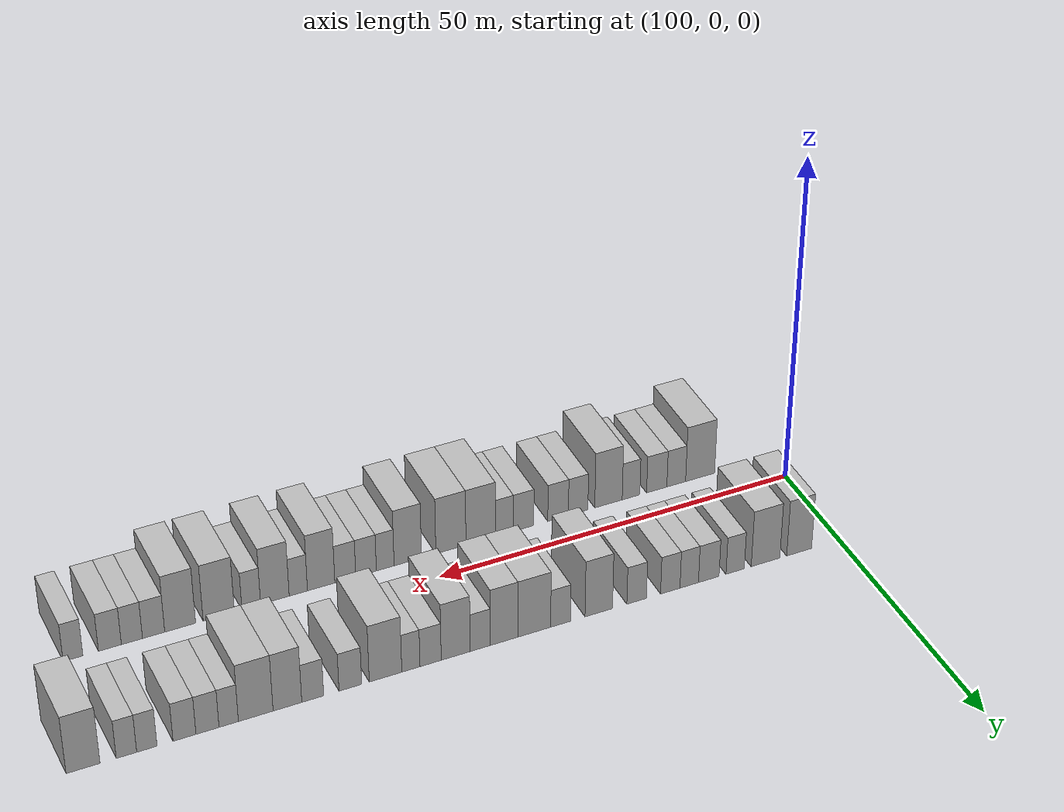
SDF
<sdf version="1.6">
 <world name="default">
  <model name="building_26">
   <static>1</static>
   <pose>105.9616 9.5000 0 0.000000 0.000000 1.570796</pose>
   <link name="link">
    <pose>0 0 4.50 0 0 0</pose>
    <collision name="collision"><geometry><box><size>10.0000 3.6286 9.0000</size></box></geometry></collision>
    <visual name="visual">
     <cast_shadows>0</cast_shadows>
     <geometry><box><size>10.0000 3.6286 9.0000</size></box></geometry>
     <material>
      <script>
       <uri>model://HANNAS_wall/materials/scripts</uri>
       <uri>model://HANNAS_wall/materials/textures</uri>
       <name>vrc/HANNAS_wall</name>
      </script>
     </material>
    </visual>
   </link>
  </model>
  <model name="building_27">
   <static>1</static>
   <pose>110.8501 9.5000 0 0.000000 0.000000 1.570796</pose>
   <link name="link">
    <pose>0 0 4.50 0 0 0</pose>
    <collision name="collision"><geometry><box><size>10.0000 4.1483 9.0000</size></box></geometry></collision>
    <visual name="visual">
     <cast_shadows>0</cast_shadows>
     <geometry><box><size>10.0000 4.1483 9.0000</size></box></geometry>
     <material>
      <script>
       <uri>model://HANNAS_wall/materials/scripts</uri>
       <uri>model://HANNAS_wall/materials/textures</uri>
       <name>vrc/HANNAS_wall</name>
      </script>
     </material>
    </visual>
   </link>
  </model>
  <model name="building_28">
   <static>1</static>
   <pose>115.2413 9.5000 0 0.000000 0.000000 1.570796</pose>
   <link name="link">
    <pose>0 0 3.00 0 0 0</pose>
    <collision name="collision"><geometry><box><size>10.0000 2.6340 6.0000</size></box></geometry></collision>
    <visual name="visual">
     <cast_shadows>0</cast_shadows>
     <geometry><box><size>10.0000 2.6340 6.0000</size></box></geometry>
     <material>
      <script>
       <uri>model://HANNAS_wall/materials/scripts</uri>
       <uri>model://HANNAS_wall/materials/textures</uri>
       <name>vrc/HANNAS_wall</name>
      </script>
     </material>
    </visual>
   </link>
  </model>
  <model name="building_29">
   <static>1</static>
   <pose>119.0284 9.5000 0 0.000000 0.000000 1.570796</pose>
   <link name="link">
    <pose>0 0 3.00 0 0 0</pose>
    <collision name="collision"><geometry><box><size>10.0000 2.9403 6.0000</size></box></geometry></collision>
    <visual name="visual">
     <cast_shadows>0</cast_shadows>
     <geometry><box><size>10.0000 2.9403 6.0000</size></box></geometry>
     <material>
      <script>
       <uri>model://HANNAS_wall/materials/scripts</uri>
       <uri>model://HANNAS_wall/materials/textures</uri>
       <name>vrc/HANNAS_wall</name>
      </script>
     </material>
    </visual>
   </link>
  </model>
  <model name="building_30">
   <static>1</static>
   <pose>121.8133 9.5000 0 0.000000 0.000000 1.570796</pose>
   <link name="link">
    <pose>0 0 3.00 0 0 0</pose>
    <collision name="collision"><geometry><box><size>10.0000 2.6295 6.0000</size></box></geometry></collision>
    <visual name="visual">
     <cast_shadows>0</cast_shadows>
     <geometry><box><size>10.0000 2.6295 6.0000</size></box></geometry>
     <material>
      <script>
       <uri>model://HANNAS_wall/materials/scripts</uri>
       <uri>model://HANNAS_wall/materials/textures</uri>
       <name>vrc/HANNAS_wall</name>
      </script>
     </material>
    </visual>
   </link>
  </model>
  <model name="building_31">
   <static>1</static>
   <pose>124.5011 9.5000 0 0.000000 0.000000 1.570796</pose>
   <link name="link">
    <pose>0 0 3.00 0 0 0</pose>
    <collision name="collision"><geometry><box><size>10.0000 2.7460 6.0000</size></box></geometry></collision>
    <visual name="visual">
     <cast_shadows>0</cast_shadows>
     <geometry><box><size>10.0000 2.7460 6.0000</size></box></geometry>
     <material>
      <script>
       <uri>model://HANNAS_wall/materials/scripts</uri>
       <uri>model://HANNAS_wall/materials/textures</uri>
       <name>vrc/HANNAS_wall</name>
      </script>
     </material>
    </visual>
   </link>
  </model>
  <model name="building_32">
   <static>1</static>
   <pose>129.2465 9.5000 0 0.000000 0.000000 1.570796</pose>
   <link name="link">
    <pose>0 0 3.00 0 0 0</pose>
    <collision name="collision"><geometry><box><size>10.0000 2.7448 6.0000</size></box></geometry></collision>
    <visual name="visual">
     <cast_shadows>0</cast_shadows>
     <geometry><box><size>10.0000 2.7448 6.0000</size></box></geometry>
     <material>
      <script>
       <uri>model://HANNAS_wall/materials/scripts</uri>
       <uri>model://HANNAS_wall/materials/textures</uri>
       <name>vrc/HANNAS_wall</name>
      </script>
     </material>
    </visual>
   </link>
  </model>
  <model name="building_33">
   <static>1</static>
   <pose>134.5329 9.5000 0 0.000000 0.000000 1.570796</pose>
   <link name="link">
    <pose>0 0 4.50 0 0 0</pose>
    <collision name="collision"><geometry><box><size>10.0000 3.8281 9.0000</size></box></geometry></collision>
    <visual name="visual">
     <cast_shadows>0</cast_shadows>
     <geometry><box><size>10.0000 3.8281 9.0000</size></box></geometry>
     <material>
      <script>
       <uri>model://HANNAS_wall/materials/scripts</uri>
       <uri>model://HANNAS_wall/materials/textures</uri>
       <name>vrc/HANNAS_wall</name>
      </script>
     </material>
    </visual>
   </link>
  </model>
  <model name="building_34">
   <static>1</static>
   <pose>139.8159 9.5000 0 0.000000 0.000000 1.570796</pose>
   <link name="link">
    <pose>0 0 3.00 0 0 0</pose>
    <collision name="collision"><geometry><box><size>10.0000 2.7378 6.0000</size></box></geometry></collision>
    <visual name="visual">
     <cast_shadows>0</cast_shadows>
     <geometry><box><size>10.0000 2.7378 6.0000</size></box></geometry>
     <material>
      <script>
       <uri>model://HANNAS_wall/materials/scripts</uri>
       <uri>model://HANNAS_wall/materials/textures</uri>
       <name>vrc/HANNAS_wall</name>
      </script>
     </material>
    </visual>
   </link>
  </model>
  <model name="building_35">
   <static>1</static>
   <pose>143.4241 9.5000 0 0.000000 0.000000 1.570796</pose>
   <link name="link">
    <pose>0 0 4.50 0 0 0</pose>
    <collision name="collision"><geometry><box><size>10.0000 4.4787 9.0000</size></box></geometry></collision>
    <visual name="visual">
     <cast_shadows>0</cast_shadows>
     <geometry><box><size>10.0000 4.4787 9.0000</size></box></geometry>
     <material>
      <script>
       <uri>model://HANNAS_wall/materials/scripts</uri>
       <uri>model://HANNAS_wall/materials/textures</uri>
       <name>vrc/HANNAS_wall</name>
      </script>
     </material>
    </visual>
   </link>
  </model>
  <model name="building_36">
   <static>1</static>
   <pose>147.5338 9.5000 0 0.000000 0.000000 1.570796</pose>
   <link name="link">
    <pose>0 0 4.50 0 0 0</pose>
    <collision name="collision"><geometry><box><size>10.0000 3.7408 9.0000</size></box></geometry></collision>
    <visual name="visual">
     <cast_shadows>0</cast_shadows>
     <geometry><box><size>10.0000 3.7408 9.0000</size></box></geometry>
     <material>
      <script>
       <uri>model://HANNAS_wall/materials/scripts</uri>
       <uri>model://HANNAS_wall/materials/textures</uri>
       <name>vrc/HANNAS_wall</name>
      </script>
     </material>
    </visual>
   </link>
  </model>
  <model name="building_37">
   <static>1</static>
   <pose>150.7700 9.5000 0 0.000000 0.000000 1.570796</pose>
   <link name="link">
    <pose>0 0 3.00 0 0 0</pose>
    <collision name="collision"><geometry><box><size>10.0000 2.7317 6.0000</size></box></geometry></collision>
    <visual name="visual">
     <cast_shadows>0</cast_shadows>
     <geometry><box><size>10.0000 2.7317 6.0000</size></box></geometry>
     <material>
      <script>
       <uri>model://HANNAS_wall/materials/scripts</uri>
       <uri>model://HANNAS_wall/materials/textures</uri>
       <name>vrc/HANNAS_wall</name>
      </script>
     </material>
    </visual>
   </link>
  </model>
  <model name="building_38">
   <static>1</static>
   <pose>154.0858 9.5000 0 0.000000 0.000000 1.570796</pose>
   <link name="link">
    <pose>0 0 4.50 0 0 0</pose>
    <collision name="collision"><geometry><box><size>10.0000 3.8998 9.0000</size></box></geometry></collision>
    <visual name="visual">
     <cast_shadows>0</cast_shadows>
     <geometry><box><size>10.0000 3.8998 9.0000</size></box></geometry>
     <material>
      <script>
       <uri>model://HANNAS_wall/materials/scripts</uri>
       <uri>model://HANNAS_wall/materials/textures</uri>
       <name>vrc/HANNAS_wall</name>
      </script>
     </material>
    </visual>
   </link>
  </model>
  <model name="building_39">
   <static>1</static>
   <pose>157.4533 9.5000 0 0.000000 0.000000 1.570796</pose>
   <link name="link">
    <pose>0 0 3.00 0 0 0</pose>
    <collision name="collision"><geometry><box><size>10.0000 2.8353 6.0000</size></box></geometry></collision>
    <visual name="visual">
     <cast_shadows>0</cast_shadows>
     <geometry><box><size>10.0000 2.8353 6.0000</size></box></geometry>
     <material>
      <script>
       <uri>model://HANNAS_wall/materials/scripts</uri>
       <uri>model://HANNAS_wall/materials/textures</uri>
       <name>vrc/HANNAS_wall</name>
      </script>
     </material>
    </visual>
   </link>
  </model>
  <model name="building_40">
   <static>1</static>
   <pose>160.0796 9.5000 0 0.000000 0.000000 1.570796</pose>
   <link name="link">
    <pose>0 0 3.00 0 0 0</pose>
    <collision name="collision"><geometry><box><size>10.0000 2.4172 6.0000</size></box></geometry></collision>
    <visual name="visual">
     <cast_shadows>0</cast_shadows>
     <geometry><box><size>10.0000 2.4172 6.0000</size></box></geometry>
     <material>
      <script>
       <uri>model://HANNAS_wall/materials/scripts</uri>
       <uri>model://HANNAS_wall/materials/textures</uri>
       <name>vrc/HANNAS_wall</name>
      </script>
     </material>
    </visual>
   </link>
  </model>
  <model name="building_41">
   <static>1</static>
   <pose>163.4362 9.5000 0 0.000000 0.000000 1.570796</pose>
   <link name="link">
    <pose>0 0 4.50 0 0 0</pose>
    <collision name="collision"><geometry><box><size>10.0000 4.2960 9.0000</size></box></geometry></collision>
    <visual name="visual">
     <cast_shadows>0</cast_shadows>
     <geometry><box><size>10.0000 4.2960 9.0000</size></box></geometry>
     <material>
      <script>
       <uri>model://HANNAS_wall/materials/scripts</uri>
       <uri>model://HANNAS_wall/materials/textures</uri>
       <name>vrc/HANNAS_wall</name>
      </script>
     </material>
    </visual>
   </link>
  </model>
  <model name="building_42">
   <static>1</static>
   <pose>168.0691 9.5000 0 0.000000 0.000000 1.570796</pose>
   <link name="link">
    <pose>0 0 3.00 0 0 0</pose>
    <collision name="collision"><geometry><box><size>10.0000 2.9698 6.0000</size></box></geometry></collision>
    <visual name="visual">
     <cast_shadows>0</cast_shadows>
     <geometry><box><size>10.0000 2.9698 6.0000</size></box></geometry>
     <material>
      <script>
       <uri>model://HANNAS_wall/materials/scripts</uri>
       <uri>model://HANNAS_wall/materials/textures</uri>
       <name>vrc/HANNAS_wall</name>
      </script>
     </material>
    </visual>
   </link>
  </model>
  <model name="building_43">
   <static>1</static>
   <pose>172.9740 9.5000 0 0.000000 0.000000 1.570796</pose>
   <link name="link">
    <pose>0 0 3.00 0 0 0</pose>
    <collision name="collision"><geometry><box><size>10.0000 2.8401 6.0000</size></box></geometry></collision>
    <visual name="visual">
     <cast_shadows>0</cast_shadows>
     <geometry><box><size>10.0000 2.8401 6.0000</size></box></geometry>
     <material>
      <script>
       <uri>model://HANNAS_wall/materials/scripts</uri>
       <uri>model://HANNAS_wall/materials/textures</uri>
       <name>vrc/HANNAS_wall</name>
      </script>
     </material>
    </visual>
   </link>
  </model>
  <model name="building_44">
   <static>1</static>
   <pose>176.2465 9.5000 0 0.000000 0.000000 1.570796</pose>
   <link name="link">
    <pose>0 0 4.50 0 0 0</pose>
    <collision name="collision"><geometry><box><size>10.0000 3.7049 9.0000</size></box></geometry></collision>
    <visual name="visual">
     <cast_shadows>0</cast_shadows>
     <geometry><box><size>10.0000 3.7049 9.0000</size></box></geometry>
     <material>
      <script>
       <uri>model://HANNAS_wall/materials/scripts</uri>
       <uri>model://HANNAS_wall/materials/textures</uri>
       <name>vrc/HANNAS_wall</name>
      </script>
     </material>
    </visual>
   </link>
  </model>
  <model name="building_45">
   <static>1</static>
   <pose>180.3199 9.5000 0 0.000000 0.000000 1.570796</pose>
   <link name="link">
    <pose>0 0 4.50 0 0 0</pose>
    <collision name="collision"><geometry><box><size>10.0000 4.4417 9.0000</size></box></geometry></collision>
    <visual name="visual">
     <cast_shadows>0</cast_shadows>
     <geometry><box><size>10.0000 4.4417 9.0000</size></box></geometry>
     <material>
      <script>
       <uri>model://HANNAS_wall/materials/scripts</uri>
       <uri>model://HANNAS_wall/materials/textures</uri>
       <name>vrc/HANNAS_wall</name>
      </script>
     </material>
    </visual>
   </link>
  </model>
  <model name="building_46">
   <static>1</static>
   <pose>183.7738 9.5000 0 0.000000 0.000000 1.570796</pose>
   <link name="link">
    <pose>0 0 3.00 0 0 0</pose>
    <collision name="collision"><geometry><box><size>10.0000 2.4662 6.0000</size></box></geometry></collision>
    <visual name="visual">
     <cast_shadows>0</cast_shadows>
     <geometry><box><size>10.0000 2.4662 6.0000</size></box></geometry>
     <material>
      <script>
       <uri>model://HANNAS_wall/materials/scripts</uri>
       <uri>model://HANNAS_wall/materials/textures</uri>
       <name>vrc/HANNAS_wall</name>
      </script>
     </material>
    </visual>
   </link>
  </model>
  <model name="building_47">
   <static>1</static>
   <pose>186.4688 9.5000 0 0.000000 0.000000 1.570796</pose>
   <link name="link">
    <pose>0 0 3.00 0 0 0</pose>
    <collision name="collision"><geometry><box><size>10.0000 2.9237 6.0000</size></box></geometry></collision>
    <visual name="visual">
     <cast_shadows>0</cast_shadows>
     <geometry><box><size>10.0000 2.9237 6.0000</size></box></geometry>
     <material>
      <script>
       <uri>model://HANNAS_wall/materials/scripts</uri>
       <uri>model://HANNAS_wall/materials/textures</uri>
       <name>vrc/HANNAS_wall</name>
      </script>
     </material>
    </visual>
   </link>
  </model>
  <model name="building_48">
   <static>1</static>
   <pose>189.3747 9.5000 0 0.000000 0.000000 1.570796</pose>
   <link name="link">
    <pose>0 0 3.00 0 0 0</pose>
    <collision name="collision"><geometry><box><size>10.0000 2.8881 6.0000</size></box></geometry></collision>
    <visual name="visual">
     <cast_shadows>0</cast_shadows>
     <geometry><box><size>10.0000 2.8881 6.0000</size></box></geometry>
     <material>
      <script>
       <uri>model://HANNAS_wall/materials/scripts</uri>
       <uri>model://HANNAS_wall/materials/textures</uri>
       <name>vrc/HANNAS_wall</name>
      </script>
     </material>
    </visual>
   </link>
  </model>
  <model name="building_49">
   <static>1</static>
   <pose>194.0902 9.5000 0 0.000000 0.000000 1.570796</pose>
   <link name="link">
    <pose>0 0 3.00 0 0 0</pose>
    <collision name="collision"><geometry><box><size>10.0000 2.5428 6.0000</size></box></geometry></collision>
    <visual name="visual">
     <cast_shadows>0</cast_shadows>
     <geometry><box><size>10.0000 2.5428 6.0000</size></box></geometry>
     <material>
      <script>
       <uri>model://HANNAS_wall/materials/scripts</uri>
       <uri>model://HANNAS_wall/materials/textures</uri>
       <name>vrc/HANNAS_wall</name>
      </script>
     </material>
    </visual>
   </link>
  </model>
  <model name="building_50">
   <static>1</static>
   <pose>196.6348 9.5000 0 0.000000 0.000000 1.570796</pose>
   <link name="link">
    <pose>0 0 3.00 0 0 0</pose>
    <collision name="collision"><geometry><box><size>10.0000 2.5464 6.0000</size></box></geometry></collision>
    <visual name="visual">
     <cast_shadows>0</cast_shadows>
     <geometry><box><size>10.0000 2.5464 6.0000</size></box></geometry>
     <material>
      <script>
       <uri>model://HANNAS_wall/materials/scripts</uri>
       <uri>model://HANNAS_wall/materials/textures</uri>
       <name>vrc/HANNAS_wall</name>
      </script>
     </material>
    </visual>
   </link>
  </model>
  <model name="building_51">
   <static>1</static>
   <pose>202.0019 9.5000 0 0.000000 0.000000 1.570796</pose>
   <link name="link">
    <pose>0 0 4.50 0 0 0</pose>
    <collision name="collision"><geometry><box><size>10.0000 4.1879 9.0000</size></box></geometry></collision>
    <visual name="visual">
     <cast_shadows>0</cast_shadows>
     <geometry><box><size>10.0000 4.1879 9.0000</size></box></geometry>
     <material>
      <script>
       <uri>model://HANNAS_wall/materials/scripts</uri>
       <uri>model://HANNAS_wall/materials/textures</uri>
       <name>vrc/HANNAS_wall</name>
      </script>
     </material>
    </visual>
   </link>
  </model>
  <model name="building_77">
   <static>1</static>
   <pose>110.5146 -9.5000 0 0.000000 0.000000 1.570796</pose>
   <link name="link">
    <pose>0 0 4.50 0 0 0</pose>
    <collision name="collision"><geometry><box><size>10.0000 4.3163 9.0000</size></box></geometry></collision>
    <visual name="visual">
     <cast_shadows>0</cast_shadows>
     <geometry><box><size>10.0000 4.3163 9.0000</size></box></geometry>
     <material>
      <script>
       <uri>model://HANNAS_wall/materials/scripts</uri>
       <uri>model://HANNAS_wall/materials/textures</uri>
       <name>vrc/HANNAS_wall</name>
      </script>
     </material>
    </visual>
   </link>
  </model>
  <model name="building_78">
   <static>1</static>
   <pose>114.0606 -9.5000 0 0.000000 0.000000 1.570796</pose>
   <link name="link">
    <pose>0 0 3.00 0 0 0</pose>
    <collision name="collision"><geometry><box><size>10.0000 2.7757 6.0000</size></box></geometry></collision>
    <visual name="visual">
     <cast_shadows>0</cast_shadows>
     <geometry><box><size>10.0000 2.7757 6.0000</size></box></geometry>
     <material>
      <script>
       <uri>model://HANNAS_wall/materials/scripts</uri>
       <uri>model://HANNAS_wall/materials/textures</uri>
       <name>vrc/HANNAS_wall</name>
      </script>
     </material>
    </visual>
   </link>
  </model>
  <model name="building_79">
   <static>1</static>
   <pose>116.9429 -9.5000 0 0.000000 0.000000 1.570796</pose>
   <link name="link">
    <pose>0 0 3.00 0 0 0</pose>
    <collision name="collision"><geometry><box><size>10.0000 2.9890 6.0000</size></box></geometry></collision>
    <visual name="visual">
     <cast_shadows>0</cast_shadows>
     <geometry><box><size>10.0000 2.9890 6.0000</size></box></geometry>
     <material>
      <script>
       <uri>model://HANNAS_wall/materials/scripts</uri>
       <uri>model://HANNAS_wall/materials/textures</uri>
       <name>vrc/HANNAS_wall</name>
      </script>
     </material>
    </visual>
   </link>
  </model>
  <model name="building_80">
   <static>1</static>
   <pose>120.7296 -9.5000 0 0.000000 0.000000 1.570796</pose>
   <link name="link">
    <pose>0 0 3.00 0 0 0</pose>
    <collision name="collision"><geometry><box><size>10.0000 2.5842 6.0000</size></box></geometry></collision>
    <visual name="visual">
     <cast_shadows>0</cast_shadows>
     <geometry><box><size>10.0000 2.5842 6.0000</size></box></geometry>
     <material>
      <script>
       <uri>model://HANNAS_wall/materials/scripts</uri>
       <uri>model://HANNAS_wall/materials/textures</uri>
       <name>vrc/HANNAS_wall</name>
      </script>
     </material>
    </visual>
   </link>
  </model>
  <model name="building_81">
   <static>1</static>
   <pose>124.0167 -9.5000 0 0.000000 0.000000 1.570796</pose>
   <link name="link">
    <pose>0 0 4.50 0 0 0</pose>
    <collision name="collision"><geometry><box><size>10.0000 3.9900 9.0000</size></box></geometry></collision>
    <visual name="visual">
     <cast_shadows>0</cast_shadows>
     <geometry><box><size>10.0000 3.9900 9.0000</size></box></geometry>
     <material>
      <script>
       <uri>model://HANNAS_wall/materials/scripts</uri>
       <uri>model://HANNAS_wall/materials/textures</uri>
       <name>vrc/HANNAS_wall</name>
      </script>
     </material>
    </visual>
   </link>
  </model>
  <model name="building_82">
   <static>1</static>
   <pose>128.4178 -9.5000 0 0.000000 0.000000 1.570796</pose>
   <link name="link">
    <pose>0 0 3.00 0 0 0</pose>
    <collision name="collision"><geometry><box><size>10.0000 2.8122 6.0000</size></box></geometry></collision>
    <visual name="visual">
     <cast_shadows>0</cast_shadows>
     <geometry><box><size>10.0000 2.8122 6.0000</size></box></geometry>
     <material>
      <script>
       <uri>model://HANNAS_wall/materials/scripts</uri>
       <uri>model://HANNAS_wall/materials/textures</uri>
       <name>vrc/HANNAS_wall</name>
      </script>
     </material>
    </visual>
   </link>
  </model>
  <model name="building_83">
   <static>1</static>
   <pose>131.3112 -9.5000 0 0.000000 0.000000 1.570796</pose>
   <link name="link">
    <pose>0 0 3.00 0 0 0</pose>
    <collision name="collision"><geometry><box><size>10.0000 2.9748 6.0000</size></box></geometry></collision>
    <visual name="visual">
     <cast_shadows>0</cast_shadows>
     <geometry><box><size>10.0000 2.9748 6.0000</size></box></geometry>
     <material>
      <script>
       <uri>model://HANNAS_wall/materials/scripts</uri>
       <uri>model://HANNAS_wall/materials/textures</uri>
       <name>vrc/HANNAS_wall</name>
      </script>
     </material>
    </visual>
   </link>
  </model>
  <model name="building_84">
   <static>1</static>
   <pose>136.2408 -9.5000 0 0.000000 0.000000 1.570796</pose>
   <link name="link">
    <pose>0 0 3.00 0 0 0</pose>
    <collision name="collision"><geometry><box><size>10.0000 2.8844 6.0000</size></box></geometry></collision>
    <visual name="visual">
     <cast_shadows>0</cast_shadows>
     <geometry><box><size>10.0000 2.8844 6.0000</size></box></geometry>
     <material>
      <script>
       <uri>model://HANNAS_wall/materials/scripts</uri>
       <uri>model://HANNAS_wall/materials/textures</uri>
       <name>vrc/HANNAS_wall</name>
      </script>
     </material>
    </visual>
   </link>
  </model>
  <model name="building_85">
   <static>1</static>
   <pose>138.9697 -9.5000 0 0.000000 0.000000 1.570796</pose>
   <link name="link">
    <pose>0 0 3.00 0 0 0</pose>
    <collision name="collision"><geometry><box><size>10.0000 2.5733 6.0000</size></box></geometry></collision>
    <visual name="visual">
     <cast_shadows>0</cast_shadows>
     <geometry><box><size>10.0000 2.5733 6.0000</size></box></geometry>
     <material>
      <script>
       <uri>model://HANNAS_wall/materials/scripts</uri>
       <uri>model://HANNAS_wall/materials/textures</uri>
       <name>vrc/HANNAS_wall</name>
      </script>
     </material>
    </visual>
   </link>
  </model>
  <model name="building_86">
   <static>1</static>
   <pose>142.3391 -9.5000 0 0.000000 0.000000 1.570796</pose>
   <link name="link">
    <pose>0 0 4.50 0 0 0</pose>
    <collision name="collision"><geometry><box><size>10.0000 4.1655 9.0000</size></box></geometry></collision>
    <visual name="visual">
     <cast_shadows>0</cast_shadows>
     <geometry><box><size>10.0000 4.1655 9.0000</size></box></geometry>
     <material>
      <script>
       <uri>model://HANNAS_wall/materials/scripts</uri>
       <uri>model://HANNAS_wall/materials/textures</uri>
       <name>vrc/HANNAS_wall</name>
      </script>
     </material>
    </visual>
   </link>
  </model>
  <model name="building_87">
   <static>1</static>
   <pose>146.5356 -9.5000 0 0.000000 0.000000 1.570796</pose>
   <link name="link">
    <pose>0 0 4.50 0 0 0</pose>
    <collision name="collision"><geometry><box><size>10.0000 4.2277 9.0000</size></box></geometry></collision>
    <visual name="visual">
     <cast_shadows>0</cast_shadows>
     <geometry><box><size>10.0000 4.2277 9.0000</size></box></geometry>
     <material>
      <script>
       <uri>model://HANNAS_wall/materials/scripts</uri>
       <uri>model://HANNAS_wall/materials/textures</uri>
       <name>vrc/HANNAS_wall</name>
      </script>
     </material>
    </visual>
   </link>
  </model>
  <model name="building_88">
   <static>1</static>
   <pose>152.5525 -9.5000 0 0.000000 0.000000 1.570796</pose>
   <link name="link">
    <pose>0 0 4.50 0 0 0</pose>
    <collision name="collision"><geometry><box><size>10.0000 3.8060 9.0000</size></box></geometry></collision>
    <visual name="visual">
     <cast_shadows>0</cast_shadows>
     <geometry><box><size>10.0000 3.8060 9.0000</size></box></geometry>
     <material>
      <script>
       <uri>model://HANNAS_wall/materials/scripts</uri>
       <uri>model://HANNAS_wall/materials/textures</uri>
       <name>vrc/HANNAS_wall</name>
      </script>
     </material>
    </visual>
   </link>
  </model>
  <model name="building_89">
   <static>1</static>
   <pose>155.6794 -9.5000 0 0.000000 0.000000 1.570796</pose>
   <link name="link">
    <pose>0 0 3.00 0 0 0</pose>
    <collision name="collision"><geometry><box><size>10.0000 2.4479 6.0000</size></box></geometry></collision>
    <visual name="visual">
     <cast_shadows>0</cast_shadows>
     <geometry><box><size>10.0000 2.4479 6.0000</size></box></geometry>
     <material>
      <script>
       <uri>model://HANNAS_wall/materials/scripts</uri>
       <uri>model://HANNAS_wall/materials/textures</uri>
       <name>vrc/HANNAS_wall</name>
      </script>
     </material>
    </visual>
   </link>
  </model>
  <model name="building_90">
   <static>1</static>
   <pose>158.3176 -9.5000 0 0.000000 0.000000 1.570796</pose>
   <link name="link">
    <pose>0 0 3.00 0 0 0</pose>
    <collision name="collision"><geometry><box><size>10.0000 2.8284 6.0000</size></box></geometry></collision>
    <visual name="visual">
     <cast_shadows>0</cast_shadows>
     <geometry><box><size>10.0000 2.8284 6.0000</size></box></geometry>
     <material>
      <script>
       <uri>model://HANNAS_wall/materials/scripts</uri>
       <uri>model://HANNAS_wall/materials/textures</uri>
       <name>vrc/HANNAS_wall</name>
      </script>
     </material>
    </visual>
   </link>
  </model>
  <model name="building_91">
   <static>1</static>
   <pose>161.1608 -9.5000 0 0.000000 0.000000 1.570796</pose>
   <link name="link">
    <pose>0 0 3.00 0 0 0</pose>
    <collision name="collision"><geometry><box><size>10.0000 2.8582 6.0000</size></box></geometry></collision>
    <visual name="visual">
     <cast_shadows>0</cast_shadows>
     <geometry><box><size>10.0000 2.8582 6.0000</size></box></geometry>
     <material>
      <script>
       <uri>model://HANNAS_wall/materials/scripts</uri>
       <uri>model://HANNAS_wall/materials/textures</uri>
       <name>vrc/HANNAS_wall</name>
      </script>
     </material>
    </visual>
   </link>
  </model>
  <model name="building_92">
   <static>1</static>
   <pose>164.4539 -9.5000 0 0.000000 0.000000 1.570796</pose>
   <link name="link">
    <pose>0 0 4.50 0 0 0</pose>
    <collision name="collision"><geometry><box><size>10.0000 3.7279 9.0000</size></box></geometry></collision>
    <visual name="visual">
     <cast_shadows>0</cast_shadows>
     <geometry><box><size>10.0000 3.7279 9.0000</size></box></geometry>
     <material>
      <script>
       <uri>model://HANNAS_wall/materials/scripts</uri>
       <uri>model://HANNAS_wall/materials/textures</uri>
       <name>vrc/HANNAS_wall</name>
      </script>
     </material>
    </visual>
   </link>
  </model>
  <model name="building_93">
   <static>1</static>
   <pose>167.5535 -9.5000 0 0.000000 0.000000 1.570796</pose>
   <link name="link">
    <pose>0 0 3.00 0 0 0</pose>
    <collision name="collision"><geometry><box><size>10.0000 2.4713 6.0000</size></box></geometry></collision>
    <visual name="visual">
     <cast_shadows>0</cast_shadows>
     <geometry><box><size>10.0000 2.4713 6.0000</size></box></geometry>
     <material>
      <script>
       <uri>model://HANNAS_wall/materials/scripts</uri>
       <uri>model://HANNAS_wall/materials/textures</uri>
       <name>vrc/HANNAS_wall</name>
      </script>
     </material>
    </visual>
   </link>
  </model>
  <model name="building_94">
   <static>1</static>
   <pose>170.7107 -9.5000 0 0.000000 0.000000 1.570796</pose>
   <link name="link">
    <pose>0 0 4.50 0 0 0</pose>
    <collision name="collision"><geometry><box><size>10.0000 3.8429 9.0000</size></box></geometry></collision>
    <visual name="visual">
     <cast_shadows>0</cast_shadows>
     <geometry><box><size>10.0000 3.8429 9.0000</size></box></geometry>
     <material>
      <script>
       <uri>model://HANNAS_wall/materials/scripts</uri>
       <uri>model://HANNAS_wall/materials/textures</uri>
       <name>vrc/HANNAS_wall</name>
      </script>
     </material>
    </visual>
   </link>
  </model>
  <model name="building_95">
   <static>1</static>
   <pose>173.8829 -9.5000 0 0.000000 0.000000 1.570796</pose>
   <link name="link">
    <pose>0 0 3.00 0 0 0</pose>
    <collision name="collision"><geometry><box><size>10.0000 2.5014 6.0000</size></box></geometry></collision>
    <visual name="visual">
     <cast_shadows>0</cast_shadows>
     <geometry><box><size>10.0000 2.5014 6.0000</size></box></geometry>
     <material>
      <script>
       <uri>model://HANNAS_wall/materials/scripts</uri>
       <uri>model://HANNAS_wall/materials/textures</uri>
       <name>vrc/HANNAS_wall</name>
      </script>
     </material>
    </visual>
   </link>
  </model>
  <model name="building_96">
   <static>1</static>
   <pose>178.2069 -9.5000 0 0.000000 0.000000 1.570796</pose>
   <link name="link">
    <pose>0 0 4.50 0 0 0</pose>
    <collision name="collision"><geometry><box><size>10.0000 4.1466 9.0000</size></box></geometry></collision>
    <visual name="visual">
     <cast_shadows>0</cast_shadows>
     <geometry><box><size>10.0000 4.1466 9.0000</size></box></geometry>
     <material>
      <script>
       <uri>model://HANNAS_wall/materials/scripts</uri>
       <uri>model://HANNAS_wall/materials/textures</uri>
       <name>vrc/HANNAS_wall</name>
      </script>
     </material>
    </visual>
   </link>
  </model>
  <model name="building_97">
   <static>1</static>
   <pose>183.3092 -9.5000 0 0.000000 0.000000 1.570796</pose>
   <link name="link">
    <pose>0 0 4.50 0 0 0</pose>
    <collision name="collision"><geometry><box><size>10.0000 4.0579 9.0000</size></box></geometry></collision>
    <visual name="visual">
     <cast_shadows>0</cast_shadows>
     <geometry><box><size>10.0000 4.0579 9.0000</size></box></geometry>
     <material>
      <script>
       <uri>model://HANNAS_wall/materials/scripts</uri>
       <uri>model://HANNAS_wall/materials/textures</uri>
       <name>vrc/HANNAS_wall</name>
      </script>
     </material>
    </visual>
   </link>
  </model>
  <model name="building_98">
   <static>1</static>
   <pose>186.7921 -9.5000 0 0.000000 0.000000 1.570796</pose>
   <link name="link">
    <pose>0 0 3.00 0 0 0</pose>
    <collision name="collision"><geometry><box><size>10.0000 2.9079 6.0000</size></box></geometry></collision>
    <visual name="visual">
     <cast_shadows>0</cast_shadows>
     <geometry><box><size>10.0000 2.9079 6.0000</size></box></geometry>
     <material>
      <script>
       <uri>model://HANNAS_wall/materials/scripts</uri>
       <uri>model://HANNAS_wall/materials/textures</uri>
       <name>vrc/HANNAS_wall</name>
      </script>
     </material>
    </visual>
   </link>
  </model>
  <model name="building_99">
   <static>1</static>
   <pose>189.6183 -9.5000 0 0.000000 0.000000 1.570796</pose>
   <link name="link">
    <pose>0 0 3.00 0 0 0</pose>
    <collision name="collision"><geometry><box><size>10.0000 2.7446 6.0000</size></box></geometry></collision>
    <visual name="visual">
     <cast_shadows>0</cast_shadows>
     <geometry><box><size>10.0000 2.7446 6.0000</size></box></geometry>
     <material>
      <script>
       <uri>model://HANNAS_wall/materials/scripts</uri>
       <uri>model://HANNAS_wall/materials/textures</uri>
       <name>vrc/HANNAS_wall</name>
      </script>
     </material>
    </visual>
   </link>
  </model>
  <model name="building_100">
   <static>1</static>
   <pose>192.4738 -9.5000 0 0.000000 0.000000 1.570796</pose>
   <link name="link">
    <pose>0 0 3.00 0 0 0</pose>
    <collision name="collision"><geometry><box><size>10.0000 2.9664 6.0000</size></box></geometry></collision>
    <visual name="visual">
     <cast_shadows>0</cast_shadows>
     <geometry><box><size>10.0000 2.9664 6.0000</size></box></geometry>
     <material>
      <script>
       <uri>model://HANNAS_wall/materials/scripts</uri>
       <uri>model://HANNAS_wall/materials/textures</uri>
       <name>vrc/HANNAS_wall</name>
      </script>
     </material>
    </visual>
   </link>
  </model>
  <model name="building_101">
   <static>1</static>
   <pose>197.2253 -9.5000 0 0.000000 0.000000 1.570796</pose>
   <link name="link">
    <pose>0 0 3.00 0 0 0</pose>
    <collision name="collision"><geometry><box><size>10.0000 2.5366 6.0000</size></box></geometry></collision>
    <visual name="visual">
     <cast_shadows>0</cast_shadows>
     <geometry><box><size>10.0000 2.5366 6.0000</size></box></geometry>
     <material>
      <script>
       <uri>model://HANNAS_wall/materials/scripts</uri>
       <uri>model://HANNAS_wall/materials/textures</uri>
       <name>vrc/HANNAS_wall</name>
      </script>
     </material>
    </visual>
   </link>
  </model>
 </world>
</sdf>
